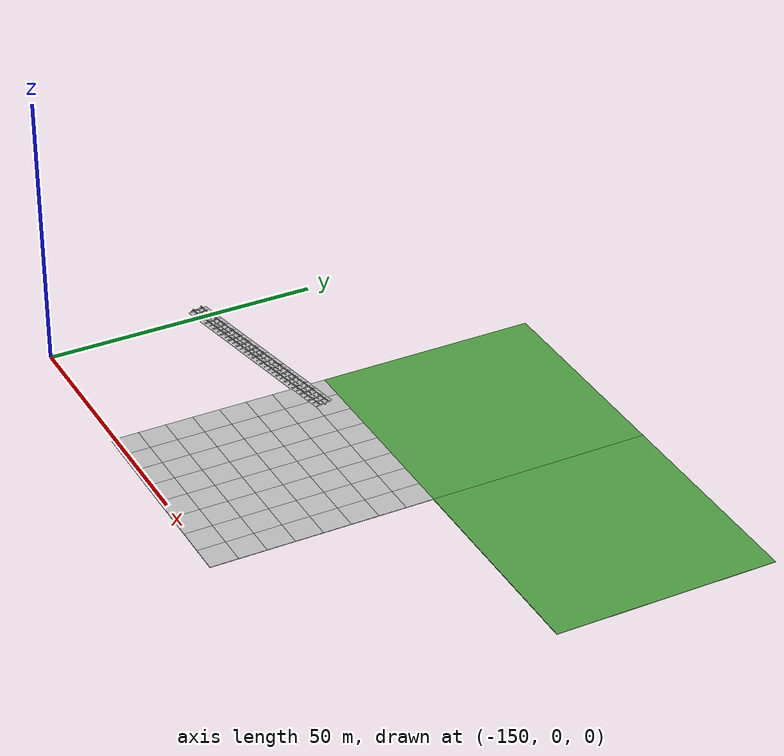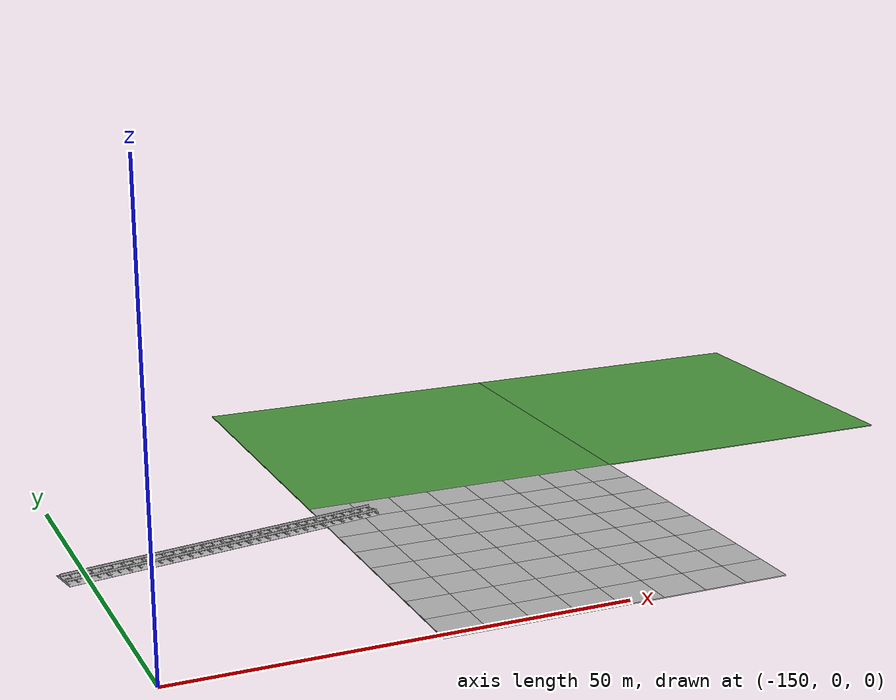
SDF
<sdf version="1.7">
 <world name="default">
  <model name="mud_plane_40x40_2">
   <model name="mud_plane_20x20">
    <model name="mud_plane">
     <static>1</static>
     <link name="link">
      <collision name="collision"><geometry><box><size>10 10 0.1</size></box></geometry></collision>
      <visual name="visual_1">
       <pose>-2.5 2.5 -0.05 0 -0 0</pose>
       <cast_shadows>0</cast_shadows>
       <geometry><box><size>5 5 0.1</size></box></geometry>
       <material>
        <script>
         <uri>model://mud_plane/materials/scripts</uri>
         <uri>model://mud_plane/materials/textures</uri>
         <name>vrc/mud</name>
        </script>
       </material>
      </visual>
      <visual name="visual_2">
       <pose>2.5 2.5 -0.05 0 -0 0</pose>
       <cast_shadows>0</cast_shadows>
       <geometry><box><size>5 5 0.1</size></box></geometry>
       <material>
        <script>
         <uri>model://mud_plane/materials/scripts</uri>
         <uri>model://mud_plane/materials/textures</uri>
         <name>vrc/mud</name>
        </script>
       </material>
      </visual>
      <visual name="visual_3">
       <pose>2.5 -2.5 -0.05 0 -0 0</pose>
       <cast_shadows>0</cast_shadows>
       <geometry><box><size>5 5 0.1</size></box></geometry>
       <material>
        <script>
         <uri>model://mud_plane/materials/scripts</uri>
         <uri>model://mud_plane/materials/textures</uri>
         <name>vrc/mud</name>
        </script>
       </material>
      </visual>
      <visual name="visual_4">
       <pose>-2.5 -2.5 -0.05 0 -0 0</pose>
       <cast_shadows>0</cast_shadows>
       <geometry><box><size>5 5 0.1</size></box></geometry>
       <material>
        <script>
         <uri>model://mud_plane/materials/scripts</uri>
         <uri>model://mud_plane/materials/textures</uri>
         <name>vrc/mud</name>
        </script>
       </material>
      </visual>
     </link>
     <pose>-4.99986 -4.99991 0 0 -0 0</pose>
    </model>
    <model name="mud_plane_0">
     <static>1</static>
     <link name="link">
      <collision name="collision"><geometry><box><size>10 10 0.1</size></box></geometry></collision>
      <visual name="visual_1">
       <pose>-2.5 2.5 -0.05 0 -0 0</pose>
       <cast_shadows>0</cast_shadows>
       <geometry><box><size>5 5 0.1</size></box></geometry>
       <material>
        <script>
         <uri>model://mud_plane/materials/scripts</uri>
         <uri>model://mud_plane/materials/textures</uri>
         <name>vrc/mud</name>
        </script>
       </material>
      </visual>
      <visual name="visual_2">
       <pose>2.5 2.5 -0.05 0 -0 0</pose>
       <cast_shadows>0</cast_shadows>
       <geometry><box><size>5 5 0.1</size></box></geometry>
       <material>
        <script>
         <uri>model://mud_plane/materials/scripts</uri>
         <uri>model://mud_plane/materials/textures</uri>
         <name>vrc/mud</name>
        </script>
       </material>
      </visual>
      <visual name="visual_3">
       <pose>2.5 -2.5 -0.05 0 -0 0</pose>
       <cast_shadows>0</cast_shadows>
       <geometry><box><size>5 5 0.1</size></box></geometry>
       <material>
        <script>
         <uri>model://mud_plane/materials/scripts</uri>
         <uri>model://mud_plane/materials/textures</uri>
         <name>vrc/mud</name>
        </script>
       </material>
      </visual>
      <visual name="visual_4">
       <pose>-2.5 -2.5 -0.05 0 -0 0</pose>
       <cast_shadows>0</cast_shadows>
       <geometry><box><size>5 5 0.1</size></box></geometry>
       <material>
        <script>
         <uri>model://mud_plane/materials/scripts</uri>
         <uri>model://mud_plane/materials/textures</uri>
         <name>vrc/mud</name>
        </script>
       </material>
      </visual>
     </link>
     <pose>-4.99946 4.99954 0 0 -0 0</pose>
    </model>
    <model name="mud_plane_1">
     <static>1</static>
     <link name="link">
      <collision name="collision"><geometry><box><size>10 10 0.1</size></box></geometry></collision>
      <visual name="visual_1">
       <pose>-2.5 2.5 -0.05 0 -0 0</pose>
       <cast_shadows>0</cast_shadows>
       <geometry><box><size>5 5 0.1</size></box></geometry>
       <material>
        <script>
         <uri>model://mud_plane/materials/scripts</uri>
         <uri>model://mud_plane/materials/textures</uri>
         <name>vrc/mud</name>
        </script>
       </material>
      </visual>
      <visual name="visual_2">
       <pose>2.5 2.5 -0.05 0 -0 0</pose>
       <cast_shadows>0</cast_shadows>
       <geometry><box><size>5 5 0.1</size></box></geometry>
       <material>
        <script>
         <uri>model://mud_plane/materials/scripts</uri>
         <uri>model://mud_plane/materials/textures</uri>
         <name>vrc/mud</name>
        </script>
       </material>
      </visual>
      <visual name="visual_3">
       <pose>2.5 -2.5 -0.05 0 -0 0</pose>
       <cast_shadows>0</cast_shadows>
       <geometry><box><size>5 5 0.1</size></box></geometry>
       <material>
        <script>
         <uri>model://mud_plane/materials/scripts</uri>
         <uri>model://mud_plane/materials/textures</uri>
         <name>vrc/mud</name>
        </script>
       </material>
      </visual>
      <visual name="visual_4">
       <pose>-2.5 -2.5 -0.05 0 -0 0</pose>
       <cast_shadows>0</cast_shadows>
       <geometry><box><size>5 5 0.1</size></box></geometry>
       <material>
        <script>
         <uri>model://mud_plane/materials/scripts</uri>
         <uri>model://mud_plane/materials/textures</uri>
         <name>vrc/mud</name>
        </script>
       </material>
      </visual>
     </link>
     <pose>4.99964 -4.99949 0 0 -0 0</pose>
    </model>
    <model name="mud_plane_2">
     <static>1</static>
     <link name="link">
      <collision name="collision"><geometry><box><size>10 10 0.1</size></box></geometry></collision>
      <visual name="visual_1">
       <pose>-2.5 2.5 -0.05 0 -0 0</pose>
       <cast_shadows>0</cast_shadows>
       <geometry><box><size>5 5 0.1</size></box></geometry>
       <material>
        <script>
         <uri>model://mud_plane/materials/scripts</uri>
         <uri>model://mud_plane/materials/textures</uri>
         <name>vrc/mud</name>
        </script>
       </material>
      </visual>
      <visual name="visual_2">
       <pose>2.5 2.5 -0.05 0 -0 0</pose>
       <cast_shadows>0</cast_shadows>
       <geometry><box><size>5 5 0.1</size></box></geometry>
       <material>
        <script>
         <uri>model://mud_plane/materials/scripts</uri>
         <uri>model://mud_plane/materials/textures</uri>
         <name>vrc/mud</name>
        </script>
       </material>
      </visual>
      <visual name="visual_3">
       <pose>2.5 -2.5 -0.05 0 -0 0</pose>
       <cast_shadows>0</cast_shadows>
       <geometry><box><size>5 5 0.1</size></box></geometry>
       <material>
        <script>
         <uri>model://mud_plane/materials/scripts</uri>
         <uri>model://mud_plane/materials/textures</uri>
         <name>vrc/mud</name>
        </script>
       </material>
      </visual>
      <visual name="visual_4">
       <pose>-2.5 -2.5 -0.05 0 -0 0</pose>
       <cast_shadows>0</cast_shadows>
       <geometry><box><size>5 5 0.1</size></box></geometry>
       <material>
        <script>
         <uri>model://mud_plane/materials/scripts</uri>
         <uri>model://mud_plane/materials/textures</uri>
         <name>vrc/mud</name>
        </script>
       </material>
      </visual>
     </link>
     <pose>4.99967 4.99986 0 0 -0 0</pose>
    </model>
    <static>0</static>
    <pose>-9.99895 9.99843 0 0 -0 0</pose>
   </model>
   <model name="mud_plane_20x20_0">
    <model name="mud_plane">
     <static>1</static>
     <link name="link">
      <collision name="collision"><geometry><box><size>10 10 0.1</size></box></geometry></collision>
      <visual name="visual_1">
       <pose>-2.5 2.5 -0.05 0 -0 0</pose>
       <cast_shadows>0</cast_shadows>
       <geometry><box><size>5 5 0.1</size></box></geometry>
       <material>
        <script>
         <uri>model://mud_plane/materials/scripts</uri>
         <uri>model://mud_plane/materials/textures</uri>
         <name>vrc/mud</name>
        </script>
       </material>
      </visual>
      <visual name="visual_2">
       <pose>2.5 2.5 -0.05 0 -0 0</pose>
       <cast_shadows>0</cast_shadows>
       <geometry><box><size>5 5 0.1</size></box></geometry>
       <material>
        <script>
         <uri>model://mud_plane/materials/scripts</uri>
         <uri>model://mud_plane/materials/textures</uri>
         <name>vrc/mud</name>
        </script>
       </material>
      </visual>
      <visual name="visual_3">
       <pose>2.5 -2.5 -0.05 0 -0 0</pose>
       <cast_shadows>0</cast_shadows>
       <geometry><box><size>5 5 0.1</size></box></geometry>
       <material>
        <script>
         <uri>model://mud_plane/materials/scripts</uri>
         <uri>model://mud_plane/materials/textures</uri>
         <name>vrc/mud</name>
        </script>
       </material>
      </visual>
      <visual name="visual_4">
       <pose>-2.5 -2.5 -0.05 0 -0 0</pose>
       <cast_shadows>0</cast_shadows>
       <geometry><box><size>5 5 0.1</size></box></geometry>
       <material>
        <script>
         <uri>model://mud_plane/materials/scripts</uri>
         <uri>model://mud_plane/materials/textures</uri>
         <name>vrc/mud</name>
        </script>
       </material>
      </visual>
     </link>
     <pose>-4.99986 -4.99991 0 0 -0 0</pose>
    </model>
    <model name="mud_plane_0">
     <static>1</static>
     <link name="link">
      <collision name="collision"><geometry><box><size>10 10 0.1</size></box></geometry></collision>
      <visual name="visual_1">
       <pose>-2.5 2.5 -0.05 0 -0 0</pose>
       <cast_shadows>0</cast_shadows>
       <geometry><box><size>5 5 0.1</size></box></geometry>
       <material>
        <script>
         <uri>model://mud_plane/materials/scripts</uri>
         <uri>model://mud_plane/materials/textures</uri>
         <name>vrc/mud</name>
        </script>
       </material>
      </visual>
      <visual name="visual_2">
       <pose>2.5 2.5 -0.05 0 -0 0</pose>
       <cast_shadows>0</cast_shadows>
       <geometry><box><size>5 5 0.1</size></box></geometry>
       <material>
        <script>
         <uri>model://mud_plane/materials/scripts</uri>
         <uri>model://mud_plane/materials/textures</uri>
         <name>vrc/mud</name>
        </script>
       </material>
      </visual>
      <visual name="visual_3">
       <pose>2.5 -2.5 -0.05 0 -0 0</pose>
       <cast_shadows>0</cast_shadows>
       <geometry><box><size>5 5 0.1</size></box></geometry>
       <material>
        <script>
         <uri>model://mud_plane/materials/scripts</uri>
         <uri>model://mud_plane/materials/textures</uri>
         <name>vrc/mud</name>
        </script>
       </material>
      </visual>
      <visual name="visual_4">
       <pose>-2.5 -2.5 -0.05 0 -0 0</pose>
       <cast_shadows>0</cast_shadows>
       <geometry><box><size>5 5 0.1</size></box></geometry>
       <material>
        <script>
         <uri>model://mud_plane/materials/scripts</uri>
         <uri>model://mud_plane/materials/textures</uri>
         <name>vrc/mud</name>
        </script>
       </material>
      </visual>
     </link>
     <pose>-4.99946 4.99954 0 0 -0 0</pose>
    </model>
    <model name="mud_plane_1">
     <static>1</static>
     <link name="link">
      <collision name="collision"><geometry><box><size>10 10 0.1</size></box></geometry></collision>
      <visual name="visual_1">
       <pose>-2.5 2.5 -0.05 0 -0 0</pose>
       <cast_shadows>0</cast_shadows>
       <geometry><box><size>5 5 0.1</size></box></geometry>
       <material>
        <script>
         <uri>model://mud_plane/materials/scripts</uri>
         <uri>model://mud_plane/materials/textures</uri>
         <name>vrc/mud</name>
        </script>
       </material>
      </visual>
      <visual name="visual_2">
       <pose>2.5 2.5 -0.05 0 -0 0</pose>
       <cast_shadows>0</cast_shadows>
       <geometry><box><size>5 5 0.1</size></box></geometry>
       <material>
        <script>
         <uri>model://mud_plane/materials/scripts</uri>
         <uri>model://mud_plane/materials/textures</uri>
         <name>vrc/mud</name>
        </script>
       </material>
      </visual>
      <visual name="visual_3">
       <pose>2.5 -2.5 -0.05 0 -0 0</pose>
       <cast_shadows>0</cast_shadows>
       <geometry><box><size>5 5 0.1</size></box></geometry>
       <material>
        <script>
         <uri>model://mud_plane/materials/scripts</uri>
         <uri>model://mud_plane/materials/textures</uri>
         <name>vrc/mud</name>
        </script>
       </material>
      </visual>
      <visual name="visual_4">
       <pose>-2.5 -2.5 -0.05 0 -0 0</pose>
       <cast_shadows>0</cast_shadows>
       <geometry><box><size>5 5 0.1</size></box></geometry>
       <material>
        <script>
         <uri>model://mud_plane/materials/scripts</uri>
         <uri>model://mud_plane/materials/textures</uri>
         <name>vrc/mud</name>
        </script>
       </material>
      </visual>
     </link>
     <pose>4.99964 -4.99949 0 0 -0 0</pose>
    </model>
    <model name="mud_plane_2">
     <static>1</static>
     <link name="link">
      <collision name="collision"><geometry><box><size>10 10 0.1</size></box></geometry></collision>
      <visual name="visual_1">
       <pose>-2.5 2.5 -0.05 0 -0 0</pose>
       <cast_shadows>0</cast_shadows>
       <geometry><box><size>5 5 0.1</size></box></geometry>
       <material>
        <script>
         <uri>model://mud_plane/materials/scripts</uri>
         <uri>model://mud_plane/materials/textures</uri>
         <name>vrc/mud</name>
        </script>
       </material>
      </visual>
      <visual name="visual_2">
       <pose>2.5 2.5 -0.05 0 -0 0</pose>
       <cast_shadows>0</cast_shadows>
       <geometry><box><size>5 5 0.1</size></box></geometry>
       <material>
        <script>
         <uri>model://mud_plane/materials/scripts</uri>
         <uri>model://mud_plane/materials/textures</uri>
         <name>vrc/mud</name>
        </script>
       </material>
      </visual>
      <visual name="visual_3">
       <pose>2.5 -2.5 -0.05 0 -0 0</pose>
       <cast_shadows>0</cast_shadows>
       <geometry><box><size>5 5 0.1</size></box></geometry>
       <material>
        <script>
         <uri>model://mud_plane/materials/scripts</uri>
         <uri>model://mud_plane/materials/textures</uri>
         <name>vrc/mud</name>
        </script>
       </material>
      </visual>
      <visual name="visual_4">
       <pose>-2.5 -2.5 -0.05 0 -0 0</pose>
       <cast_shadows>0</cast_shadows>
       <geometry><box><size>5 5 0.1</size></box></geometry>
       <material>
        <script>
         <uri>model://mud_plane/materials/scripts</uri>
         <uri>model://mud_plane/materials/textures</uri>
         <name>vrc/mud</name>
        </script>
       </material>
      </visual>
     </link>
     <pose>4.99967 4.99986 0 0 -0 0</pose>
    </model>
    <static>0</static>
    <pose>9.99933 9.9997 0 0 -0 0</pose>
   </model>
   <model name="mud_plane_20x20_1">
    <model name="mud_plane">
     <static>1</static>
     <link name="link">
      <collision name="collision"><geometry><box><size>10 10 0.1</size></box></geometry></collision>
      <visual name="visual_1">
       <pose>-2.5 2.5 -0.05 0 -0 0</pose>
       <cast_shadows>0</cast_shadows>
       <geometry><box><size>5 5 0.1</size></box></geometry>
       <material>
        <script>
         <uri>model://mud_plane/materials/scripts</uri>
         <uri>model://mud_plane/materials/textures</uri>
         <name>vrc/mud</name>
        </script>
       </material>
      </visual>
      <visual name="visual_2">
       <pose>2.5 2.5 -0.05 0 -0 0</pose>
       <cast_shadows>0</cast_shadows>
       <geometry><box><size>5 5 0.1</size></box></geometry>
       <material>
        <script>
         <uri>model://mud_plane/materials/scripts</uri>
         <uri>model://mud_plane/materials/textures</uri>
         <name>vrc/mud</name>
        </script>
       </material>
      </visual>
      <visual name="visual_3">
       <pose>2.5 -2.5 -0.05 0 -0 0</pose>
       <cast_shadows>0</cast_shadows>
       <geometry><box><size>5 5 0.1</size></box></geometry>
       <material>
        <script>
         <uri>model://mud_plane/materials/scripts</uri>
         <uri>model://mud_plane/materials/textures</uri>
         <name>vrc/mud</name>
        </script>
       </material>
      </visual>
      <visual name="visual_4">
       <pose>-2.5 -2.5 -0.05 0 -0 0</pose>
       <cast_shadows>0</cast_shadows>
       <geometry><box><size>5 5 0.1</size></box></geometry>
       <material>
        <script>
         <uri>model://mud_plane/materials/scripts</uri>
         <uri>model://mud_plane/materials/textures</uri>
         <name>vrc/mud</name>
        </script>
       </material>
      </visual>
     </link>
     <pose>-4.99986 -4.99991 0 0 -0 0</pose>
    </model>
    <model name="mud_plane_0">
     <static>1</static>
     <link name="link">
      <collision name="collision"><geometry><box><size>10 10 0.1</size></box></geometry></collision>
      <visual name="visual_1">
       <pose>-2.5 2.5 -0.05 0 -0 0</pose>
       <cast_shadows>0</cast_shadows>
       <geometry><box><size>5 5 0.1</size></box></geometry>
       <material>
        <script>
         <uri>model://mud_plane/materials/scripts</uri>
         <uri>model://mud_plane/materials/textures</uri>
         <name>vrc/mud</name>
        </script>
       </material>
      </visual>
      <visual name="visual_2">
       <pose>2.5 2.5 -0.05 0 -0 0</pose>
       <cast_shadows>0</cast_shadows>
       <geometry><box><size>5 5 0.1</size></box></geometry>
       <material>
        <script>
         <uri>model://mud_plane/materials/scripts</uri>
         <uri>model://mud_plane/materials/textures</uri>
         <name>vrc/mud</name>
        </script>
       </material>
      </visual>
      <visual name="visual_3">
       <pose>2.5 -2.5 -0.05 0 -0 0</pose>
       <cast_shadows>0</cast_shadows>
       <geometry><box><size>5 5 0.1</size></box></geometry>
       <material>
        <script>
         <uri>model://mud_plane/materials/scripts</uri>
         <uri>model://mud_plane/materials/textures</uri>
         <name>vrc/mud</name>
        </script>
       </material>
      </visual>
      <visual name="visual_4">
       <pose>-2.5 -2.5 -0.05 0 -0 0</pose>
       <cast_shadows>0</cast_shadows>
       <geometry><box><size>5 5 0.1</size></box></geometry>
       <material>
        <script>
         <uri>model://mud_plane/materials/scripts</uri>
         <uri>model://mud_plane/materials/textures</uri>
         <name>vrc/mud</name>
        </script>
       </material>
      </visual>
     </link>
     <pose>-4.99946 4.99954 0 0 -0 0</pose>
    </model>
    <model name="mud_plane_1">
     <static>1</static>
     <link name="link">
      <collision name="collision"><geometry><box><size>10 10 0.1</size></box></geometry></collision>
      <visual name="visual_1">
       <pose>-2.5 2.5 -0.05 0 -0 0</pose>
       <cast_shadows>0</cast_shadows>
       <geometry><box><size>5 5 0.1</size></box></geometry>
       <material>
        <script>
         <uri>model://mud_plane/materials/scripts</uri>
         <uri>model://mud_plane/materials/textures</uri>
         <name>vrc/mud</name>
        </script>
       </material>
      </visual>
      <visual name="visual_2">
       <pose>2.5 2.5 -0.05 0 -0 0</pose>
       <cast_shadows>0</cast_shadows>
       <geometry><box><size>5 5 0.1</size></box></geometry>
       <material>
        <script>
         <uri>model://mud_plane/materials/scripts</uri>
         <uri>model://mud_plane/materials/textures</uri>
         <name>vrc/mud</name>
        </script>
       </material>
      </visual>
      <visual name="visual_3">
       <pose>2.5 -2.5 -0.05 0 -0 0</pose>
       <cast_shadows>0</cast_shadows>
       <geometry><box><size>5 5 0.1</size></box></geometry>
       <material>
        <script>
         <uri>model://mud_plane/materials/scripts</uri>
         <uri>model://mud_plane/materials/textures</uri>
         <name>vrc/mud</name>
        </script>
       </material>
      </visual>
      <visual name="visual_4">
       <pose>-2.5 -2.5 -0.05 0 -0 0</pose>
       <cast_shadows>0</cast_shadows>
       <geometry><box><size>5 5 0.1</size></box></geometry>
       <material>
        <script>
         <uri>model://mud_plane/materials/scripts</uri>
         <uri>model://mud_plane/materials/textures</uri>
         <name>vrc/mud</name>
        </script>
       </material>
      </visual>
     </link>
     <pose>4.99964 -4.99949 0 0 -0 0</pose>
    </model>
    <model name="mud_plane_2">
     <static>1</static>
     <link name="link">
      <collision name="collision"><geometry><box><size>10 10 0.1</size></box></geometry></collision>
      <visual name="visual_1">
       <pose>-2.5 2.5 -0.05 0 -0 0</pose>
       <cast_shadows>0</cast_shadows>
       <geometry><box><size>5 5 0.1</size></box></geometry>
       <material>
        <script>
         <uri>model://mud_plane/materials/scripts</uri>
         <uri>model://mud_plane/materials/textures</uri>
         <name>vrc/mud</name>
        </script>
       </material>
      </visual>
      <visual name="visual_2">
       <pose>2.5 2.5 -0.05 0 -0 0</pose>
       <cast_shadows>0</cast_shadows>
       <geometry><box><size>5 5 0.1</size></box></geometry>
       <material>
        <script>
         <uri>model://mud_plane/materials/scripts</uri>
         <uri>model://mud_plane/materials/textures</uri>
         <name>vrc/mud</name>
        </script>
       </material>
      </visual>
      <visual name="visual_3">
       <pose>2.5 -2.5 -0.05 0 -0 0</pose>
       <cast_shadows>0</cast_shadows>
       <geometry><box><size>5 5 0.1</size></box></geometry>
       <material>
        <script>
         <uri>model://mud_plane/materials/scripts</uri>
         <uri>model://mud_plane/materials/textures</uri>
         <name>vrc/mud</name>
        </script>
       </material>
      </visual>
      <visual name="visual_4">
       <pose>-2.5 -2.5 -0.05 0 -0 0</pose>
       <cast_shadows>0</cast_shadows>
       <geometry><box><size>5 5 0.1</size></box></geometry>
       <material>
        <script>
         <uri>model://mud_plane/materials/scripts</uri>
         <uri>model://mud_plane/materials/textures</uri>
         <name>vrc/mud</name>
        </script>
       </material>
      </visual>
     </link>
     <pose>4.99967 4.99986 0 0 -0 0</pose>
    </model>
    <static>0</static>
    <pose>9.9993 -9.99877 0 0 -0 0</pose>
   </model>
   <model name="mud_plane_20x20_2">
    <model name="mud_plane">
     <static>1</static>
     <link name="link">
      <collision name="collision"><geometry><box><size>10 10 0.1</size></box></geometry></collision>
      <visual name="visual_1">
       <pose>-2.5 2.5 -0.05 0 -0 0</pose>
       <cast_shadows>0</cast_shadows>
       <geometry><box><size>5 5 0.1</size></box></geometry>
       <material>
        <script>
         <uri>model://mud_plane/materials/scripts</uri>
         <uri>model://mud_plane/materials/textures</uri>
         <name>vrc/mud</name>
        </script>
       </material>
      </visual>
      <visual name="visual_2">
       <pose>2.5 2.5 -0.05 0 -0 0</pose>
       <cast_shadows>0</cast_shadows>
       <geometry><box><size>5 5 0.1</size></box></geometry>
       <material>
        <script>
         <uri>model://mud_plane/materials/scripts</uri>
         <uri>model://mud_plane/materials/textures</uri>
         <name>vrc/mud</name>
        </script>
       </material>
      </visual>
      <visual name="visual_3">
       <pose>2.5 -2.5 -0.05 0 -0 0</pose>
       <cast_shadows>0</cast_shadows>
       <geometry><box><size>5 5 0.1</size></box></geometry>
       <material>
        <script>
         <uri>model://mud_plane/materials/scripts</uri>
         <uri>model://mud_plane/materials/textures</uri>
         <name>vrc/mud</name>
        </script>
       </material>
      </visual>
      <visual name="visual_4">
       <pose>-2.5 -2.5 -0.05 0 -0 0</pose>
       <cast_shadows>0</cast_shadows>
       <geometry><box><size>5 5 0.1</size></box></geometry>
       <material>
        <script>
         <uri>model://mud_plane/materials/scripts</uri>
         <uri>model://mud_plane/materials/textures</uri>
         <name>vrc/mud</name>
        </script>
       </material>
      </visual>
     </link>
     <pose>-4.99986 -4.99991 0 0 -0 0</pose>
    </model>
    <model name="mud_plane_0">
     <static>1</static>
     <link name="link">
      <collision name="collision"><geometry><box><size>10 10 0.1</size></box></geometry></collision>
      <visual name="visual_1">
       <pose>-2.5 2.5 -0.05 0 -0 0</pose>
       <cast_shadows>0</cast_shadows>
       <geometry><box><size>5 5 0.1</size></box></geometry>
       <material>
        <script>
         <uri>model://mud_plane/materials/scripts</uri>
         <uri>model://mud_plane/materials/textures</uri>
         <name>vrc/mud</name>
        </script>
       </material>
      </visual>
      <visual name="visual_2">
       <pose>2.5 2.5 -0.05 0 -0 0</pose>
       <cast_shadows>0</cast_shadows>
       <geometry><box><size>5 5 0.1</size></box></geometry>
       <material>
        <script>
         <uri>model://mud_plane/materials/scripts</uri>
         <uri>model://mud_plane/materials/textures</uri>
         <name>vrc/mud</name>
        </script>
       </material>
      </visual>
      <visual name="visual_3">
       <pose>2.5 -2.5 -0.05 0 -0 0</pose>
       <cast_shadows>0</cast_shadows>
       <geometry><box><size>5 5 0.1</size></box></geometry>
       <material>
        <script>
         <uri>model://mud_plane/materials/scripts</uri>
         <uri>model://mud_plane/materials/textures</uri>
         <name>vrc/mud</name>
        </script>
       </material>
      </visual>
      <visual name="visual_4">
       <pose>-2.5 -2.5 -0.05 0 -0 0</pose>
       <cast_shadows>0</cast_shadows>
       <geometry><box><size>5 5 0.1</size></box></geometry>
       <material>
        <script>
         <uri>model://mud_plane/materials/scripts</uri>
         <uri>model://mud_plane/materials/textures</uri>
         <name>vrc/mud</name>
        </script>
       </material>
      </visual>
     </link>
     <pose>-4.99946 4.99954 0 0 -0 0</pose>
    </model>
    <model name="mud_plane_1">
     <static>1</static>
     <link name="link">
      <collision name="collision"><geometry><box><size>10 10 0.1</size></box></geometry></collision>
      <visual name="visual_1">
       <pose>-2.5 2.5 -0.05 0 -0 0</pose>
       <cast_shadows>0</cast_shadows>
       <geometry><box><size>5 5 0.1</size></box></geometry>
       <material>
        <script>
         <uri>model://mud_plane/materials/scripts</uri>
         <uri>model://mud_plane/materials/textures</uri>
         <name>vrc/mud</name>
        </script>
       </material>
      </visual>
      <visual name="visual_2">
       <pose>2.5 2.5 -0.05 0 -0 0</pose>
       <cast_shadows>0</cast_shadows>
       <geometry><box><size>5 5 0.1</size></box></geometry>
       <material>
        <script>
         <uri>model://mud_plane/materials/scripts</uri>
         <uri>model://mud_plane/materials/textures</uri>
         <name>vrc/mud</name>
        </script>
       </material>
      </visual>
      <visual name="visual_3">
       <pose>2.5 -2.5 -0.05 0 -0 0</pose>
       <cast_shadows>0</cast_shadows>
       <geometry><box><size>5 5 0.1</size></box></geometry>
       <material>
        <script>
         <uri>model://mud_plane/materials/scripts</uri>
         <uri>model://mud_plane/materials/textures</uri>
         <name>vrc/mud</name>
        </script>
       </material>
      </visual>
      <visual name="visual_4">
       <pose>-2.5 -2.5 -0.05 0 -0 0</pose>
       <cast_shadows>0</cast_shadows>
       <geometry><box><size>5 5 0.1</size></box></geometry>
       <material>
        <script>
         <uri>model://mud_plane/materials/scripts</uri>
         <uri>model://mud_plane/materials/textures</uri>
         <name>vrc/mud</name>
        </script>
       </material>
      </visual>
     </link>
     <pose>4.99964 -4.99949 0 0 -0 0</pose>
    </model>
    <model name="mud_plane_2">
     <static>1</static>
     <link name="link">
      <collision name="collision"><geometry><box><size>10 10 0.1</size></box></geometry></collision>
      <visual name="visual_1">
       <pose>-2.5 2.5 -0.05 0 -0 0</pose>
       <cast_shadows>0</cast_shadows>
       <geometry><box><size>5 5 0.1</size></box></geometry>
       <material>
        <script>
         <uri>model://mud_plane/materials/scripts</uri>
         <uri>model://mud_plane/materials/textures</uri>
         <name>vrc/mud</name>
        </script>
       </material>
      </visual>
      <visual name="visual_2">
       <pose>2.5 2.5 -0.05 0 -0 0</pose>
       <cast_shadows>0</cast_shadows>
       <geometry><box><size>5 5 0.1</size></box></geometry>
       <material>
        <script>
         <uri>model://mud_plane/materials/scripts</uri>
         <uri>model://mud_plane/materials/textures</uri>
         <name>vrc/mud</name>
        </script>
       </material>
      </visual>
      <visual name="visual_3">
       <pose>2.5 -2.5 -0.05 0 -0 0</pose>
       <cast_shadows>0</cast_shadows>
       <geometry><box><size>5 5 0.1</size></box></geometry>
       <material>
        <script>
         <uri>model://mud_plane/materials/scripts</uri>
         <uri>model://mud_plane/materials/textures</uri>
         <name>vrc/mud</name>
        </script>
       </material>
      </visual>
      <visual name="visual_4">
       <pose>-2.5 -2.5 -0.05 0 -0 0</pose>
       <cast_shadows>0</cast_shadows>
       <geometry><box><size>5 5 0.1</size></box></geometry>
       <material>
        <script>
         <uri>model://mud_plane/materials/scripts</uri>
         <uri>model://mud_plane/materials/textures</uri>
         <name>vrc/mud</name>
        </script>
       </material>
      </visual>
     </link>
     <pose>4.99967 4.99986 0 0 -0 0</pose>
    </model>
    <static>0</static>
    <pose>-9.99969 -9.99935 0 0 -0 0</pose>
   </model>
   <static>0</static>
   <pose>-101.433 19.2428 0 0 -0 0</pose>
  </model>
  <model name="grass_plane_40x40">
   <pose>-101.436 59.2383 -0.05 0 -0 0</pose>
   <static>1</static>
   <link name="link">
    <collision name="collision"><geometry><box><size>40 40 0.1</size></box></geometry></collision>
    <visual name="grass">
     <cast_shadows>0</cast_shadows>
     <geometry><box><size>40 40 0.1</size></box></geometry>
     <material>
      <script><uri>file://media/materials/scripts/gazebo.material</uri><name>Gazebo/Grass</name></script>
     </material>
    </visual>
   </link>
  </model>
  <model name="grass_plane_40x40_0">
   <pose>-61.4372 59.2381 -0.05 0 -0 0</pose>
   <static>1</static>
   <link name="link">
    <collision name="collision"><geometry><box><size>40 40 0.1</size></box></geometry></collision>
    <visual name="grass">
     <cast_shadows>0</cast_shadows>
     <geometry><box><size>40 40 0.1</size></box></geometry>
     <material>
      <script><uri>file://media/materials/scripts/gazebo.material</uri><name>Gazebo/Grass</name></script>
     </material>
    </visual>
   </link>
  </model>
  <model name="railway16_1">
   <model name="railway8">
    <model name="railway4">
     <model name="railway2">
      <model name="railway">
       <static>1</static>
       <link name="link">
        <visual name="visual"><geometry><mesh><uri>model://railway/meshes/model.dae</uri></mesh></geometry></visual>
       </link>
       <pose>1.19969 -6.9e-05 0 0 -0 0</pose>
      </model>
      <model name="railway_0">
       <static>1</static>
       <link name="link">
        <visual name="visual"><geometry><mesh><uri>model://railway/meshes/model.dae</uri></mesh></geometry></visual>
       </link>
       <pose>-1.1997 6.9e-05 0 0 -0 0</pose>
      </model>
      <static>0</static>
      <pose>-2.39934 4.6e-05 0 0 -0 0</pose>
     </model>
     <model name="railway2_0">
      <model name="railway">
       <static>1</static>
       <link name="link">
        <visual name="visual"><geometry><mesh><uri>model://railway/meshes/model.dae</uri></mesh></geometry></visual>
       </link>
       <pose>1.19969 -6.9e-05 0 0 -0 0</pose>
      </model>
      <model name="railway_0">
       <static>1</static>
       <link name="link">
        <visual name="visual"><geometry><mesh><uri>model://railway/meshes/model.dae</uri></mesh></geometry></visual>
       </link>
       <pose>-1.1997 6.9e-05 0 0 -0 0</pose>
      </model>
      <static>0</static>
      <pose>2.39934 -5.4e-05 0 0 -0 0</pose>
     </model>
     <static>0</static>
     <pose>4.79871 -0.000105 0 0 -0 0</pose>
    </model>
    <model name="railway4_0">
     <model name="railway2">
      <model name="railway">
       <static>1</static>
       <link name="link">
        <visual name="visual"><geometry><mesh><uri>model://railway/meshes/model.dae</uri></mesh></geometry></visual>
       </link>
       <pose>1.19969 -6.9e-05 0 0 -0 0</pose>
      </model>
      <model name="railway_0">
       <static>1</static>
       <link name="link">
        <visual name="visual"><geometry><mesh><uri>model://railway/meshes/model.dae</uri></mesh></geometry></visual>
       </link>
       <pose>-1.1997 6.9e-05 0 0 -0 0</pose>
      </model>
      <static>0</static>
      <pose>-2.39934 4.6e-05 0 0 -0 0</pose>
     </model>
     <model name="railway2_0">
      <model name="railway">
       <static>1</static>
       <link name="link">
        <visual name="visual"><geometry><mesh><uri>model://railway/meshes/model.dae</uri></mesh></geometry></visual>
       </link>
       <pose>1.19969 -6.9e-05 0 0 -0 0</pose>
      </model>
      <model name="railway_0">
       <static>1</static>
       <link name="link">
        <visual name="visual"><geometry><mesh><uri>model://railway/meshes/model.dae</uri></mesh></geometry></visual>
       </link>
       <pose>-1.1997 6.9e-05 0 0 -0 0</pose>
      </model>
      <static>0</static>
      <pose>2.39934 -5.4e-05 0 0 -0 0</pose>
     </model>
     <static>0</static>
     <pose>-4.79871 9.6e-05 0 0 -0 0</pose>
    </model>
    <static>0</static>
    <pose>9.5973 -0.000147 0 0 -0 0</pose>
   </model>
   <model name="railway8_0">
    <model name="railway4">
     <model name="railway2">
      <model name="railway">
       <static>1</static>
       <link name="link">
        <visual name="visual"><geometry><mesh><uri>model://railway/meshes/model.dae</uri></mesh></geometry></visual>
       </link>
       <pose>1.19969 -6.9e-05 0 0 -0 0</pose>
      </model>
      <model name="railway_0">
       <static>1</static>
       <link name="link">
        <visual name="visual"><geometry><mesh><uri>model://railway/meshes/model.dae</uri></mesh></geometry></visual>
       </link>
       <pose>-1.1997 6.9e-05 0 0 -0 0</pose>
      </model>
      <static>0</static>
      <pose>-2.39934 4.6e-05 0 0 -0 0</pose>
     </model>
     <model name="railway2_0">
      <model name="railway">
       <static>1</static>
       <link name="link">
        <visual name="visual"><geometry><mesh><uri>model://railway/meshes/model.dae</uri></mesh></geometry></visual>
       </link>
       <pose>1.19969 -6.9e-05 0 0 -0 0</pose>
      </model>
      <model name="railway_0">
       <static>1</static>
       <link name="link">
        <visual name="visual"><geometry><mesh><uri>model://railway/meshes/model.dae</uri></mesh></geometry></visual>
       </link>
       <pose>-1.1997 6.9e-05 0 0 -0 0</pose>
      </model>
      <static>0</static>
      <pose>2.39934 -5.4e-05 0 0 -0 0</pose>
     </model>
     <static>0</static>
     <pose>4.79871 -0.000105 0 0 -0 0</pose>
    </model>
    <model name="railway4_0">
     <model name="railway2">
      <model name="railway">
       <static>1</static>
       <link name="link">
        <visual name="visual"><geometry><mesh><uri>model://railway/meshes/model.dae</uri></mesh></geometry></visual>
       </link>
       <pose>1.19969 -6.9e-05 0 0 -0 0</pose>
      </model>
      <model name="railway_0">
       <static>1</static>
       <link name="link">
        <visual name="visual"><geometry><mesh><uri>model://railway/meshes/model.dae</uri></mesh></geometry></visual>
       </link>
       <pose>-1.1997 6.9e-05 0 0 -0 0</pose>
      </model>
      <static>0</static>
      <pose>-2.39934 4.6e-05 0 0 -0 0</pose>
     </model>
     <model name="railway2_0">
      <model name="railway">
       <static>1</static>
       <link name="link">
        <visual name="visual"><geometry><mesh><uri>model://railway/meshes/model.dae</uri></mesh></geometry></visual>
       </link>
       <pose>1.19969 -6.9e-05 0 0 -0 0</pose>
      </model>
      <model name="railway_0">
       <static>1</static>
       <link name="link">
        <visual name="visual"><geometry><mesh><uri>model://railway/meshes/model.dae</uri></mesh></geometry></visual>
       </link>
       <pose>-1.1997 6.9e-05 0 0 -0 0</pose>
      </model>
      <static>0</static>
      <pose>2.39934 -5.4e-05 0 0 -0 0</pose>
     </model>
     <static>0</static>
     <pose>-4.79871 9.6e-05 0 0 -0 0</pose>
    </model>
    <static>0</static>
    <pose>-9.59731 0.000145 0 0 -0 0</pose>
   </model>
   <static>0</static>
   <pose>-134.875 32.3548 0 0 -0 0.175</pose>
  </model>
 </world>
</sdf>
